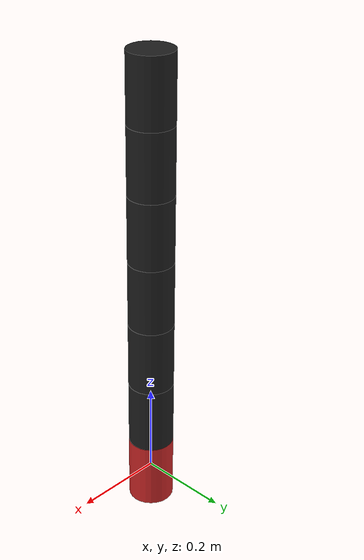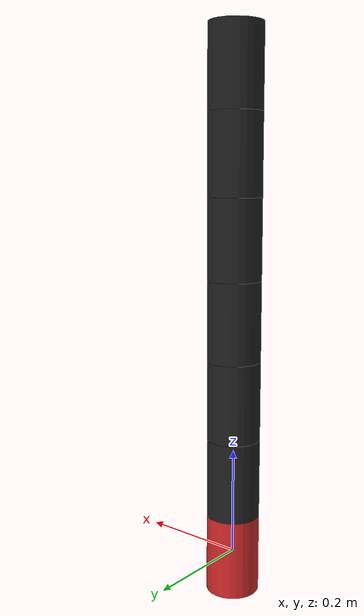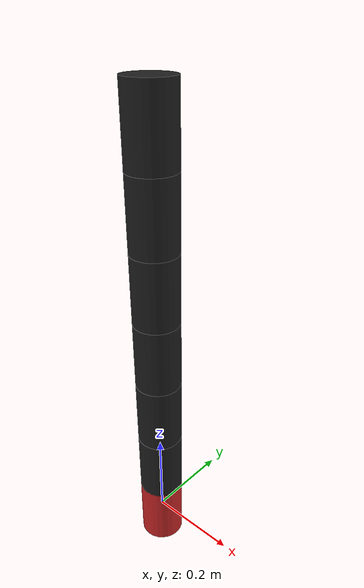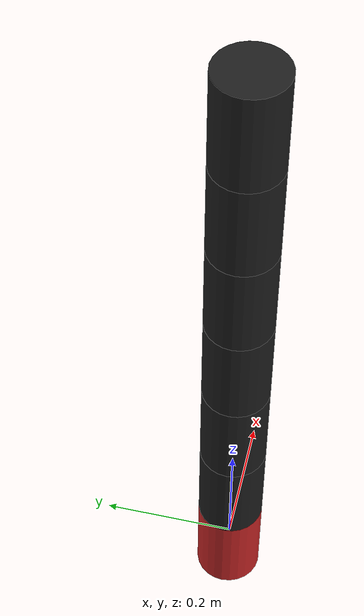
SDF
<?xml version="1.0" ?>
<sdf version="1.5">
  <model name='snake'>

    <link name='body_link_0'>
      <pose>0 0 0 0 -0 0</pose>
      <inertial>
        <pose>0 0 0 0 -0 0</pose>
        <mass>1.031</mass>
        <inertia>
          <ixx>0.00357413</ixx>
          <ixy>0</ixy>
          <ixz>0</ixz>
          <iyy>0.00508627</iyy>
          <iyz>0</iyz>
          <izz>0.00838547</izz>
        </inertia>
      </inertial>
      <collision name='base_link_collision_0'>
        <pose>0 0 0 0 -0 0</pose>
        <geometry>
          <cylinder>
            <length>0.15</length>
            <radius>0.05</radius>
          </cylinder>
        </geometry>
      </collision>
      <visual name='base_link_visual_0'>
        <pose>0 0 0 0 -0 0</pose>
        <geometry>
          <cylinder>
            <length>0.15</length>
            <radius>0.05</radius>
          </cylinder>
        </geometry>
        <material>
          <script>
            <uri>file://media/materials/scripts/gazebo.material</uri>
            <name>Gazebo/Red</name>
          </script>
        </material>
      </visual>
    </link>

    <link name='aux_body_link_1'>
      <pose>0 0 0.15 0 -0 0</pose>
      <inertial>
        <pose>0 0 0 0 -0 0</pose>
        <mass>1.031</mass>
        <inertia>
          <ixx>0.00357413</ixx>
          <ixy>0</ixy>
          <ixz>0</ixz>
          <iyy>0.00508627</iyy>
          <iyz>0</iyz>
          <izz>0.00838547</izz>
        </inertia>
      </inertial>
      <collision name='aux_body_link_1_collision'>
        <pose>0 0 0 0 -0 0</pose>
        <geometry>
          <cylinder>
            <length>0.15</length>
            <radius>0.05</radius>
          </cylinder>
        </geometry>
      </collision>
      <visual name='aux_body_link_1_visual'>
        <pose>0 0 0 0 -0 0</pose>
        <geometry>
          <cylinder>
            <length>0.15</length>
            <radius>0.05</radius>
          </cylinder>
        </geometry>
        <material>
          <script>
            <uri>file://media/materials/scripts/gazebo.material</uri>
            <name>Gazebo/Black</name>
          </script>
        </material>
      </visual>
    </link>

    <joint name='aux_body_link_1_joint' type='revolute'>
        <pose>0 0 -0.075 0 0 0</pose>
      <child>aux_body_link_1</child>
      <parent>body_link_0</parent>
      <axis>
        <xyz>1 0 0</xyz>
        <limit>
          <lower>-0.785398</lower>
          <upper>0.785398</upper>
          <effort>20</effort>
          <velocity>2</velocity>
        </limit>
      </axis>
    </joint>

    <link name='body_link_1'>
      <pose>0 0 0.15 0 -0 0</pose>
      <inertial>
        <pose>0 0 0 0 -0 0</pose>
        <mass>1.031</mass>
        <inertia>
          <ixx>0.00357413</ixx>
          <ixy>0</ixy>
          <ixz>0</ixz>
          <iyy>0.00508627</iyy>
          <iyz>0</iyz>
          <izz>0.00838547</izz>
        </inertia>
      </inertial>
      <collision name='body_link_1_collision'>
        <pose>0 0 0 0 -0 0</pose>
        <geometry>
          <cylinder>
            <length>0.15</length>
            <radius>0.05</radius>
          </cylinder>
        </geometry>
      </collision>
      <visual name='body_link_1_visual'>
        <pose>0 0 0 0 -0 0</pose>
        <geometry>
          <cylinder>
            <length>0.15</length>
            <radius>0.05</radius>
          </cylinder>
        </geometry>
        <material>
          <script>
            <uri>file://media/materials/scripts/gazebo.material</uri>
            <name>Gazebo/Green</name>
          </script>
        </material>
      </visual>
    </link>

    <joint name='body_link_1_joint' type='revolute'>
        <pose>0 0 -0.075 0 0 0</pose>
      <child>body_link_1</child>
      <parent>aux_body_link_1</parent>
      <axis>
        <xyz>0 1 0</xyz>
        <limit>
          <lower>-0.785398</lower>
          <upper>0.785398</upper>
          <effort>20</effort>
          <velocity>2</velocity>
        </limit>
      </axis>
    </joint>

    <link name='aux_body_link_2'>
      <pose>0 0 0.3 0 -0 0</pose>
      <inertial>
        <pose>0 0 0 0 -0 0</pose>
        <mass>1.031</mass>
        <inertia>
          <ixx>0.00357413</ixx>
          <ixy>0</ixy>
          <ixz>0</ixz>
          <iyy>0.00508627</iyy>
          <iyz>0</iyz>
          <izz>0.00838547</izz>
        </inertia>
      </inertial>
      <collision name='aux_body_link_2_collision'>
        <pose>0 0 0 0 -0 0</pose>
        <geometry>
          <cylinder>
            <length>0.15</length>
            <radius>0.05</radius>
          </cylinder>
        </geometry>
      </collision>
      <visual name='aux_body_link_2_visual'>
        <pose>0 0 0 0 -0 0</pose>
        <geometry>
          <cylinder>
            <length>0.15</length>
            <radius>0.05</radius>
          </cylinder>
        </geometry>
        <material>
          <script>
            <uri>file://media/materials/scripts/gazebo.material</uri>
            <name>Gazebo/Black</name>
          </script>
        </material>
      </visual>
    </link>

    <joint name='aux_body_link_2_joint' type='revolute'>
        <pose>0 0 -0.075 0 0 0</pose>
      <child>aux_body_link_2</child>
      <parent>body_link_1</parent>
      <axis>
        <xyz>1 0 0</xyz>
        <limit>
          <lower>-0.785398</lower>
          <upper>0.785398</upper>
          <effort>20</effort>
          <velocity>2</velocity>
        </limit>
      </axis>
    </joint>

    <link name='body_link_2'>
      <pose>0 0 0.3 0 -0 0</pose>
      <inertial>
        <pose>0 0 0 0 -0 0</pose>
        <mass>1.031</mass>
        <inertia>
          <ixx>0.00357413</ixx>
          <ixy>0</ixy>
          <ixz>0</ixz>
          <iyy>0.00508627</iyy>
          <iyz>0</iyz>
          <izz>0.00838547</izz>
        </inertia>
      </inertial>
      <collision name='body_link_2_collision'>
        <pose>0 0 0 0 -0 0</pose>
        <geometry>
          <cylinder>
            <length>0.15</length>
            <radius>0.05</radius>
          </cylinder>
        </geometry>
      </collision>
      <visual name='body_link_2_visual'>
        <pose>0 0 0 0 -0 0</pose>
        <geometry>
          <cylinder>
            <length>0.15</length>
            <radius>0.05</radius>
          </cylinder>
        </geometry>
        <material>
          <script>
            <uri>file://media/materials/scripts/gazebo.material</uri>
            <name>Gazebo/Green</name>
          </script>
        </material>
      </visual>
    </link>

    <joint name='body_link_2_joint' type='revolute'>
        <pose>0 0 -0.075 0 0 0</pose>
      <child>body_link_2</child>
      <parent>aux_body_link_2</parent>
      <axis>
        <xyz>0 1 0</xyz>
        <limit>
          <lower>-0.785398</lower>
          <upper>0.785398</upper>
          <effort>20</effort>
          <velocity>2</velocity>
        </limit>
      </axis>
    </joint>

    <link name='aux_body_link_3'>
      <pose>0 0 0.44999999999999996 0 -0 0</pose>
      <inertial>
        <pose>0 0 0 0 -0 0</pose>
        <mass>1.031</mass>
        <inertia>
          <ixx>0.00357413</ixx>
          <ixy>0</ixy>
          <ixz>0</ixz>
          <iyy>0.00508627</iyy>
          <iyz>0</iyz>
          <izz>0.00838547</izz>
        </inertia>
      </inertial>
      <collision name='aux_body_link_3_collision'>
        <pose>0 0 0 0 -0 0</pose>
        <geometry>
          <cylinder>
            <length>0.15</length>
            <radius>0.05</radius>
          </cylinder>
        </geometry>
      </collision>
      <visual name='aux_body_link_3_visual'>
        <pose>0 0 0 0 -0 0</pose>
        <geometry>
          <cylinder>
            <length>0.15</length>
            <radius>0.05</radius>
          </cylinder>
        </geometry>
        <material>
          <script>
            <uri>file://media/materials/scripts/gazebo.material</uri>
            <name>Gazebo/Black</name>
          </script>
        </material>
      </visual>
    </link>

    <joint name='aux_body_link_3_joint' type='revolute'>
        <pose>0 0 -0.075 0 0 0</pose>
      <child>aux_body_link_3</child>
      <parent>body_link_2</parent>
      <axis>
        <xyz>1 0 0</xyz>
        <limit>
          <lower>-0.785398</lower>
          <upper>0.785398</upper>
          <effort>20</effort>
          <velocity>2</velocity>
        </limit>
      </axis>
    </joint>

    <link name='body_link_3'>
      <pose>0 0 0.44999999999999996 0 -0 0</pose>
      <inertial>
        <pose>0 0 0 0 -0 0</pose>
        <mass>1.031</mass>
        <inertia>
          <ixx>0.00357413</ixx>
          <ixy>0</ixy>
          <ixz>0</ixz>
          <iyy>0.00508627</iyy>
          <iyz>0</iyz>
          <izz>0.00838547</izz>
        </inertia>
      </inertial>
      <collision name='body_link_3_collision'>
        <pose>0 0 0 0 -0 0</pose>
        <geometry>
          <cylinder>
            <length>0.15</length>
            <radius>0.05</radius>
          </cylinder>
        </geometry>
      </collision>
      <visual name='body_link_3_visual'>
        <pose>0 0 0 0 -0 0</pose>
        <geometry>
          <cylinder>
            <length>0.15</length>
            <radius>0.05</radius>
          </cylinder>
        </geometry>
        <material>
          <script>
            <uri>file://media/materials/scripts/gazebo.material</uri>
            <name>Gazebo/Green</name>
          </script>
        </material>
      </visual>
    </link>

    <joint name='body_link_3_joint' type='revolute'>
        <pose>0 0 -0.075 0 0 0</pose>
      <child>body_link_3</child>
      <parent>aux_body_link_3</parent>
      <axis>
        <xyz>0 1 0</xyz>
        <limit>
          <lower>-0.785398</lower>
          <upper>0.785398</upper>
          <effort>20</effort>
          <velocity>2</velocity>
        </limit>
      </axis>
    </joint>

    <link name='aux_body_link_4'>
      <pose>0 0 0.6 0 -0 0</pose>
      <inertial>
        <pose>0 0 0 0 -0 0</pose>
        <mass>1.031</mass>
        <inertia>
          <ixx>0.00357413</ixx>
          <ixy>0</ixy>
          <ixz>0</ixz>
          <iyy>0.00508627</iyy>
          <iyz>0</iyz>
          <izz>0.00838547</izz>
        </inertia>
      </inertial>
      <collision name='aux_body_link_4_collision'>
        <pose>0 0 0 0 -0 0</pose>
        <geometry>
          <cylinder>
            <length>0.15</length>
            <radius>0.05</radius>
          </cylinder>
        </geometry>
      </collision>
      <visual name='aux_body_link_4_visual'>
        <pose>0 0 0 0 -0 0</pose>
        <geometry>
          <cylinder>
            <length>0.15</length>
            <radius>0.05</radius>
          </cylinder>
        </geometry>
        <material>
          <script>
            <uri>file://media/materials/scripts/gazebo.material</uri>
            <name>Gazebo/Black</name>
          </script>
        </material>
      </visual>
    </link>

    <joint name='aux_body_link_4_joint' type='revolute'>
        <pose>0 0 -0.075 0 0 0</pose>
      <child>aux_body_link_4</child>
      <parent>body_link_3</parent>
      <axis>
        <xyz>1 0 0</xyz>
        <limit>
          <lower>-0.785398</lower>
          <upper>0.785398</upper>
          <effort>20</effort>
          <velocity>2</velocity>
        </limit>
      </axis>
    </joint>

    <link name='body_link_4'>
      <pose>0 0 0.6 0 -0 0</pose>
      <inertial>
        <pose>0 0 0 0 -0 0</pose>
        <mass>1.031</mass>
        <inertia>
          <ixx>0.00357413</ixx>
          <ixy>0</ixy>
          <ixz>0</ixz>
          <iyy>0.00508627</iyy>
          <iyz>0</iyz>
          <izz>0.00838547</izz>
        </inertia>
      </inertial>
      <collision name='body_link_4_collision'>
        <pose>0 0 0 0 -0 0</pose>
        <geometry>
          <cylinder>
            <length>0.15</length>
            <radius>0.05</radius>
          </cylinder>
        </geometry>
      </collision>
      <visual name='body_link_4_visual'>
        <pose>0 0 0 0 -0 0</pose>
        <geometry>
          <cylinder>
            <length>0.15</length>
            <radius>0.05</radius>
          </cylinder>
        </geometry>
        <material>
          <script>
            <uri>file://media/materials/scripts/gazebo.material</uri>
            <name>Gazebo/Green</name>
          </script>
        </material>
      </visual>
    </link>

    <joint name='body_link_4_joint' type='revolute'>
        <pose>0 0 -0.075 0 0 0</pose>
      <child>body_link_4</child>
      <parent>aux_body_link_4</parent>
      <axis>
        <xyz>0 1 0</xyz>
        <limit>
          <lower>-0.785398</lower>
          <upper>0.785398</upper>
          <effort>20</effort>
          <velocity>2</velocity>
        </limit>
      </axis>
    </joint>

    <link name='aux_body_link_5'>
      <pose>0 0 0.75 0 -0 0</pose>
      <inertial>
        <pose>0 0 0 0 -0 0</pose>
        <mass>1.031</mass>
        <inertia>
          <ixx>0.00357413</ixx>
          <ixy>0</ixy>
          <ixz>0</ixz>
          <iyy>0.00508627</iyy>
          <iyz>0</iyz>
          <izz>0.00838547</izz>
        </inertia>
      </inertial>
      <collision name='aux_body_link_5_collision'>
        <pose>0 0 0 0 -0 0</pose>
        <geometry>
          <cylinder>
            <length>0.15</length>
            <radius>0.05</radius>
          </cylinder>
        </geometry>
      </collision>
      <visual name='aux_body_link_5_visual'>
        <pose>0 0 0 0 -0 0</pose>
        <geometry>
          <cylinder>
            <length>0.15</length>
            <radius>0.05</radius>
          </cylinder>
        </geometry>
        <material>
          <script>
            <uri>file://media/materials/scripts/gazebo.material</uri>
            <name>Gazebo/Black</name>
          </script>
        </material>
      </visual>
    </link>

    <joint name='aux_body_link_5_joint' type='revolute'>
        <pose>0 0 -0.075 0 0 0</pose>
      <child>aux_body_link_5</child>
      <parent>body_link_4</parent>
      <axis>
        <xyz>1 0 0</xyz>
        <limit>
          <lower>-0.785398</lower>
          <upper>0.785398</upper>
          <effort>20</effort>
          <velocity>2</velocity>
        </limit>
      </axis>
    </joint>

    <link name='body_link_5'>
      <pose>0 0 0.75 0 -0 0</pose>
      <inertial>
        <pose>0 0 0 0 -0 0</pose>
        <mass>1.031</mass>
        <inertia>
          <ixx>0.00357413</ixx>
          <ixy>0</ixy>
          <ixz>0</ixz>
          <iyy>0.00508627</iyy>
          <iyz>0</iyz>
          <izz>0.00838547</izz>
        </inertia>
      </inertial>
      <collision name='body_link_5_collision'>
        <pose>0 0 0 0 -0 0</pose>
        <geometry>
          <cylinder>
            <length>0.15</length>
            <radius>0.05</radius>
          </cylinder>
        </geometry>
      </collision>
      <visual name='body_link_5_visual'>
        <pose>0 0 0 0 -0 0</pose>
        <geometry>
          <cylinder>
            <length>0.15</length>
            <radius>0.05</radius>
          </cylinder>
        </geometry>
        <material>
          <script>
            <uri>file://media/materials/scripts/gazebo.material</uri>
            <name>Gazebo/Green</name>
          </script>
        </material>
      </visual>
    </link>

    <joint name='body_link_5_joint' type='revolute'>
        <pose>0 0 -0.075 0 0 0</pose>
      <child>body_link_5</child>
      <parent>aux_body_link_5</parent>
      <axis>
        <xyz>0 1 0</xyz>
        <limit>
          <lower>-0.785398</lower>
          <upper>0.785398</upper>
          <effort>20</effort>
          <velocity>2</velocity>
        </limit>
      </axis>
    </joint>

    <link name='aux_body_link_6'>
      <pose>0 0 0.8999999999999999 0 -0 0</pose>
      <inertial>
        <pose>0 0 0 0 -0 0</pose>
        <mass>1.031</mass>
        <inertia>
          <ixx>0.00357413</ixx>
          <ixy>0</ixy>
          <ixz>0</ixz>
          <iyy>0.00508627</iyy>
          <iyz>0</iyz>
          <izz>0.00838547</izz>
        </inertia>
      </inertial>
      <collision name='aux_body_link_6_collision'>
        <pose>0 0 0 0 -0 0</pose>
        <geometry>
          <cylinder>
            <length>0.15</length>
            <radius>0.05</radius>
          </cylinder>
        </geometry>
      </collision>
      <visual name='aux_body_link_6_visual'>
        <pose>0 0 0 0 -0 0</pose>
        <geometry>
          <cylinder>
            <length>0.15</length>
            <radius>0.05</radius>
          </cylinder>
        </geometry>
        <material>
          <script>
            <uri>file://media/materials/scripts/gazebo.material</uri>
            <name>Gazebo/Black</name>
          </script>
        </material>
      </visual>
    </link>

    <joint name='aux_body_link_6_joint' type='revolute'>
        <pose>0 0 -0.075 0 0 0</pose>
      <child>aux_body_link_6</child>
      <parent>body_link_5</parent>
      <axis>
        <xyz>1 0 0</xyz>
        <limit>
          <lower>-0.785398</lower>
          <upper>0.785398</upper>
          <effort>20</effort>
          <velocity>2</velocity>
        </limit>
      </axis>
    </joint>

    <link name='body_link_6'>
      <pose>0 0 0.8999999999999999 0 -0 0</pose>
      <inertial>
        <pose>0 0 0 0 -0 0</pose>
        <mass>1.031</mass>
        <inertia>
          <ixx>0.00357413</ixx>
          <ixy>0</ixy>
          <ixz>0</ixz>
          <iyy>0.00508627</iyy>
          <iyz>0</iyz>
          <izz>0.00838547</izz>
        </inertia>
      </inertial>
      <collision name='body_link_6_collision'>
        <pose>0 0 0 0 -0 0</pose>
        <geometry>
          <cylinder>
            <length>0.15</length>
            <radius>0.05</radius>
          </cylinder>
        </geometry>
      </collision>
      <visual name='body_link_6_visual'>
        <pose>0 0 0 0 -0 0</pose>
        <geometry>
          <cylinder>
            <length>0.15</length>
            <radius>0.05</radius>
          </cylinder>
        </geometry>
        <material>
          <script>
            <uri>file://media/materials/scripts/gazebo.material</uri>
            <name>Gazebo/Green</name>
          </script>
        </material>
      </visual>
    </link>

    <joint name='body_link_6_joint' type='revolute'>
        <pose>0 0 -0.075 0 0 0</pose>
      <child>body_link_6</child>
      <parent>aux_body_link_6</parent>
      <axis>
        <xyz>0 1 0</xyz>
        <limit>
          <lower>-0.785398</lower>
          <upper>0.785398</upper>
          <effort>20</effort>
          <velocity>2</velocity>
        </limit>
      </axis>
    </joint>

  </model>
</sdf>
